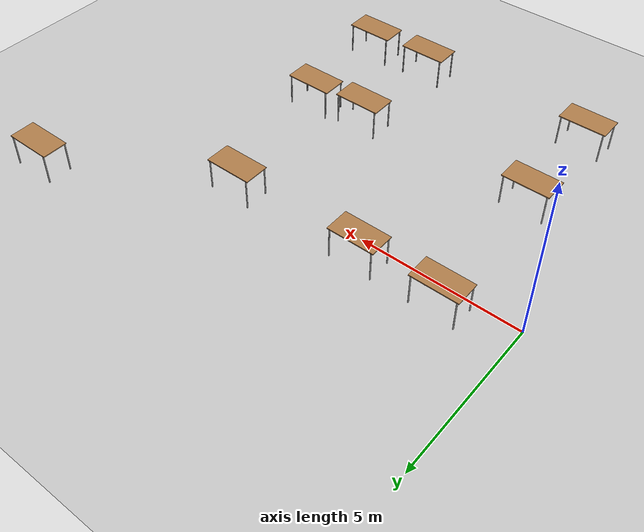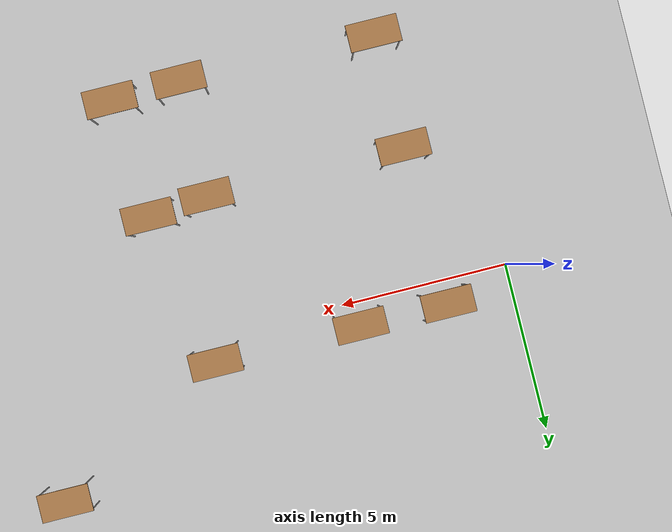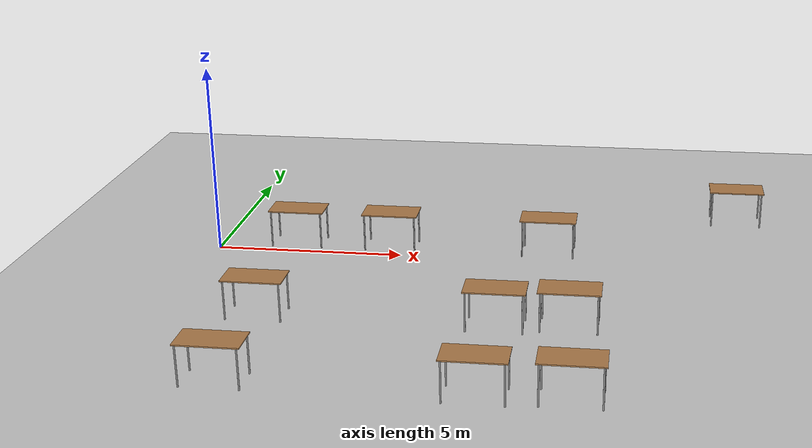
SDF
<sdf version="1.6">
 <world name="default">
  <model name="ground_plane">
   <static>1</static>
   <link name="link">
    <collision name="collision">
     <geometry><plane><normal>0 0 1</normal><size>100 100</size></plane></geometry>
     <surface>
      <contact><collide_bitmask>65535</collide_bitmask></contact>
      <friction><ode><mu>100</mu><mu2>50</mu2></ode></friction>
     </surface>
    </collision>
    <visual name="visual">
     <cast_shadows>0</cast_shadows>
     <geometry><plane><normal>0 0 1</normal><size>100 100</size></plane></geometry>
     <material>
      <script><uri>file://media/materials/scripts/gazebo.material</uri><name>Gazebo/Grey</name></script>
     </material>
    </visual>
   </link>
  </model>
  <model name="table_0">
   <static>1</static>
   <link name="link">
    <collision name="surface">
     <pose>0 0 1 0 -0 0</pose>
     <geometry><box><size>1.5 0.8 0.03</size></box></geometry>
     <surface><friction><ode><mu>0.6</mu><mu2>0.6</mu2></ode></friction></surface>
    </collision>
    <visual name="visual1">
     <pose>0 0 1 0 -0 0</pose>
     <geometry><box><size>1.5 0.8 0.03</size></box></geometry>
     <material>
      <script><uri>file://media/materials/scripts/gazebo.material</uri><name>Gazebo/Wood</name></script>
     </material>
    </visual>
    <collision name="front_left_leg">
     <pose>0.68 0.38 0.5 0 -0 0</pose>
     <geometry><cylinder><radius>0.02</radius><length>1</length></cylinder></geometry>
    </collision>
    <visual name="front_left_leg">
     <pose>0.68 0.38 0.5 0 -0 0</pose>
     <geometry><cylinder><radius>0.02</radius><length>1</length></cylinder></geometry>
     <material>
      <script><uri>file://media/materials/scripts/gazebo.material</uri><name>Gazebo/Grey</name></script>
     </material>
    </visual>
    <collision name="front_right_leg">
     <pose>0.68 -0.38 0.5 0 -0 0</pose>
     <geometry><cylinder><radius>0.02</radius><length>1</length></cylinder></geometry>
    </collision>
    <visual name="front_right_leg">
     <pose>0.68 -0.38 0.5 0 -0 0</pose>
     <geometry><cylinder><radius>0.02</radius><length>1</length></cylinder></geometry>
     <material>
      <script><uri>file://media/materials/scripts/gazebo.material</uri><name>Gazebo/Grey</name></script>
     </material>
    </visual>
    <collision name="back_right_leg">
     <pose>-0.68 -0.38 0.5 0 -0 0</pose>
     <geometry><cylinder><radius>0.02</radius><length>1</length></cylinder></geometry>
    </collision>
    <visual name="back_right_leg">
     <pose>-0.68 -0.38 0.5 0 -0 0</pose>
     <geometry><cylinder><radius>0.02</radius><length>1</length></cylinder></geometry>
     <material>
      <script><uri>file://media/materials/scripts/gazebo.material</uri><name>Gazebo/Grey</name></script>
     </material>
    </visual>
    <collision name="back_left_leg">
     <pose>-0.68 0.38 0.5 0 -0 0</pose>
     <geometry><cylinder><radius>0.02</radius><length>1</length></cylinder></geometry>
    </collision>
    <visual name="back_left_leg">
     <pose>-0.68 0.38 0.5 0 -0 0</pose>
     <geometry><cylinder><radius>0.02</radius><length>1</length></cylinder></geometry>
     <material>
      <script><uri>file://media/materials/scripts/gazebo.material</uri><name>Gazebo/Grey</name></script>
     </material>
    </visual>
   </link>
   <pose>4.6481 0.634532 0 0 -0 0</pose>
  </model>
  <model name="table_1">
   <static>1</static>
   <link name="link">
    <collision name="surface">
     <pose>0 0 1 0 -0 0</pose>
     <geometry><box><size>1.5 0.8 0.03</size></box></geometry>
     <surface><friction><ode><mu>0.6</mu><mu2>0.6</mu2></ode></friction></surface>
    </collision>
    <visual name="visual1">
     <pose>0 0 1 0 -0 0</pose>
     <geometry><box><size>1.5 0.8 0.03</size></box></geometry>
     <material>
      <script><uri>file://media/materials/scripts/gazebo.material</uri><name>Gazebo/Wood</name></script>
     </material>
    </visual>
    <collision name="front_left_leg">
     <pose>0.68 0.38 0.5 0 -0 0</pose>
     <geometry><cylinder><radius>0.02</radius><length>1</length></cylinder></geometry>
    </collision>
    <visual name="front_left_leg">
     <pose>0.68 0.38 0.5 0 -0 0</pose>
     <geometry><cylinder><radius>0.02</radius><length>1</length></cylinder></geometry>
     <material>
      <script><uri>file://media/materials/scripts/gazebo.material</uri><name>Gazebo/Grey</name></script>
     </material>
    </visual>
    <collision name="front_right_leg">
     <pose>0.68 -0.38 0.5 0 -0 0</pose>
     <geometry><cylinder><radius>0.02</radius><length>1</length></cylinder></geometry>
    </collision>
    <visual name="front_right_leg">
     <pose>0.68 -0.38 0.5 0 -0 0</pose>
     <geometry><cylinder><radius>0.02</radius><length>1</length></cylinder></geometry>
     <material>
      <script><uri>file://media/materials/scripts/gazebo.material</uri><name>Gazebo/Grey</name></script>
     </material>
    </visual>
    <collision name="back_right_leg">
     <pose>-0.68 -0.38 0.5 0 -0 0</pose>
     <geometry><cylinder><radius>0.02</radius><length>1</length></cylinder></geometry>
    </collision>
    <visual name="back_right_leg">
     <pose>-0.68 -0.38 0.5 0 -0 0</pose>
     <geometry><cylinder><radius>0.02</radius><length>1</length></cylinder></geometry>
     <material>
      <script><uri>file://media/materials/scripts/gazebo.material</uri><name>Gazebo/Grey</name></script>
     </material>
    </visual>
    <collision name="back_left_leg">
     <pose>-0.68 0.38 0.5 0 -0 0</pose>
     <geometry><cylinder><radius>0.02</radius><length>1</length></cylinder></geometry>
    </collision>
    <visual name="back_left_leg">
     <pose>-0.68 0.38 0.5 0 -0 0</pose>
     <geometry><cylinder><radius>0.02</radius><length>1</length></cylinder></geometry>
     <material>
      <script><uri>file://media/materials/scripts/gazebo.material</uri><name>Gazebo/Grey</name></script>
     </material>
    </visual>
   </link>
   <pose>2.07335 0.631478 0 0 -0 0</pose>
  </model>
  <model name="table_1_clone_1">
   <static>1</static>
   <link name="link">
    <collision name="surface">
     <pose>0 0 1 0 -0 0</pose>
     <geometry><box><size>1.5 0.8 0.03</size></box></geometry>
     <surface><friction><ode><mu>0.6</mu><mu2>0.6</mu2></ode></friction></surface>
    </collision>
    <visual name="visual1">
     <pose>0 0 1 0 -0 0</pose>
     <geometry><box><size>1.5 0.8 0.03</size></box></geometry>
     <material>
      <script><uri>file://media/materials/scripts/gazebo.material</uri><name>Gazebo/Wood</name></script>
     </material>
    </visual>
    <collision name="front_left_leg">
     <pose>0.68 0.38 0.5 0 -0 0</pose>
     <geometry><cylinder><radius>0.02</radius><length>1</length></cylinder></geometry>
    </collision>
    <visual name="front_left_leg">
     <pose>0.68 0.38 0.5 0 -0 0</pose>
     <geometry><cylinder><radius>0.02</radius><length>1</length></cylinder></geometry>
     <material>
      <script><uri>file://media/materials/scripts/gazebo.material</uri><name>Gazebo/Grey</name></script>
     </material>
    </visual>
    <collision name="front_right_leg">
     <pose>0.68 -0.38 0.5 0 -0 0</pose>
     <geometry><cylinder><radius>0.02</radius><length>1</length></cylinder></geometry>
    </collision>
    <visual name="front_right_leg">
     <pose>0.68 -0.38 0.5 0 -0 0</pose>
     <geometry><cylinder><radius>0.02</radius><length>1</length></cylinder></geometry>
     <material>
      <script><uri>file://media/materials/scripts/gazebo.material</uri><name>Gazebo/Grey</name></script>
     </material>
    </visual>
    <collision name="back_right_leg">
     <pose>-0.68 -0.38 0.5 0 -0 0</pose>
     <geometry><cylinder><radius>0.02</radius><length>1</length></cylinder></geometry>
    </collision>
    <visual name="back_right_leg">
     <pose>-0.68 -0.38 0.5 0 -0 0</pose>
     <geometry><cylinder><radius>0.02</radius><length>1</length></cylinder></geometry>
     <material>
      <script><uri>file://media/materials/scripts/gazebo.material</uri><name>Gazebo/Grey</name></script>
     </material>
    </visual>
    <collision name="back_left_leg">
     <pose>-0.68 0.38 0.5 0 -0 0</pose>
     <geometry><cylinder><radius>0.02</radius><length>1</length></cylinder></geometry>
    </collision>
    <visual name="back_left_leg">
     <pose>-0.68 0.38 0.5 0 -0 0</pose>
     <geometry><cylinder><radius>0.02</radius><length>1</length></cylinder></geometry>
     <material>
      <script><uri>file://media/materials/scripts/gazebo.material</uri><name>Gazebo/Grey</name></script>
     </material>
    </visual>
   </link>
   <pose>2.22704 -4.02272 0 0 -0 0</pose>
  </model>
  <model name="table_1_clone_2">
   <static>1</static>
   <link name="link">
    <collision name="surface">
     <pose>0 0 1 0 -0 0</pose>
     <geometry><box><size>1.5 0.8 0.03</size></box></geometry>
     <surface><friction><ode><mu>0.6</mu><mu2>0.6</mu2></ode></friction></surface>
    </collision>
    <visual name="visual1">
     <pose>0 0 1 0 -0 0</pose>
     <geometry><box><size>1.5 0.8 0.03</size></box></geometry>
     <material>
      <script><uri>file://media/materials/scripts/gazebo.material</uri><name>Gazebo/Wood</name></script>
     </material>
    </visual>
    <collision name="front_left_leg">
     <pose>0.68 0.38 0.5 0 -0 0</pose>
     <geometry><cylinder><radius>0.02</radius><length>1</length></cylinder></geometry>
    </collision>
    <visual name="front_left_leg">
     <pose>0.68 0.38 0.5 0 -0 0</pose>
     <geometry><cylinder><radius>0.02</radius><length>1</length></cylinder></geometry>
     <material>
      <script><uri>file://media/materials/scripts/gazebo.material</uri><name>Gazebo/Grey</name></script>
     </material>
    </visual>
    <collision name="front_right_leg">
     <pose>0.68 -0.38 0.5 0 -0 0</pose>
     <geometry><cylinder><radius>0.02</radius><length>1</length></cylinder></geometry>
    </collision>
    <visual name="front_right_leg">
     <pose>0.68 -0.38 0.5 0 -0 0</pose>
     <geometry><cylinder><radius>0.02</radius><length>1</length></cylinder></geometry>
     <material>
      <script><uri>file://media/materials/scripts/gazebo.material</uri><name>Gazebo/Grey</name></script>
     </material>
    </visual>
    <collision name="back_right_leg">
     <pose>-0.68 -0.38 0.5 0 -0 0</pose>
     <geometry><cylinder><radius>0.02</radius><length>1</length></cylinder></geometry>
    </collision>
    <visual name="back_right_leg">
     <pose>-0.68 -0.38 0.5 0 -0 0</pose>
     <geometry><cylinder><radius>0.02</radius><length>1</length></cylinder></geometry>
     <material>
      <script><uri>file://media/materials/scripts/gazebo.material</uri><name>Gazebo/Grey</name></script>
     </material>
    </visual>
    <collision name="back_left_leg">
     <pose>-0.68 0.38 0.5 0 -0 0</pose>
     <geometry><cylinder><radius>0.02</radius><length>1</length></cylinder></geometry>
    </collision>
    <visual name="back_left_leg">
     <pose>-0.68 0.38 0.5 0 -0 0</pose>
     <geometry><cylinder><radius>0.02</radius><length>1</length></cylinder></geometry>
     <material>
      <script><uri>file://media/materials/scripts/gazebo.material</uri><name>Gazebo/Grey</name></script>
     </material>
    </visual>
   </link>
   <pose>2.26716 -7.37331 0 0 -0 0</pose>
  </model>
  <model name="table_1_clone_4">
   <static>1</static>
   <link name="link">
    <collision name="surface">
     <pose>0 0 1 0 -0 0</pose>
     <geometry><box><size>1.5 0.8 0.03</size></box></geometry>
     <surface><friction><ode><mu>0.6</mu><mu2>0.6</mu2></ode></friction></surface>
    </collision>
    <visual name="visual1">
     <pose>0 0 1 0 -0 0</pose>
     <geometry><box><size>1.5 0.8 0.03</size></box></geometry>
     <material>
      <script><uri>file://media/materials/scripts/gazebo.material</uri><name>Gazebo/Wood</name></script>
     </material>
    </visual>
    <collision name="front_left_leg">
     <pose>0.68 0.38 0.5 0 -0 0</pose>
     <geometry><cylinder><radius>0.02</radius><length>1</length></cylinder></geometry>
    </collision>
    <visual name="front_left_leg">
     <pose>0.68 0.38 0.5 0 -0 0</pose>
     <geometry><cylinder><radius>0.02</radius><length>1</length></cylinder></geometry>
     <material>
      <script><uri>file://media/materials/scripts/gazebo.material</uri><name>Gazebo/Grey</name></script>
     </material>
    </visual>
    <collision name="front_right_leg">
     <pose>0.68 -0.38 0.5 0 -0 0</pose>
     <geometry><cylinder><radius>0.02</radius><length>1</length></cylinder></geometry>
    </collision>
    <visual name="front_right_leg">
     <pose>0.68 -0.38 0.5 0 -0 0</pose>
     <geometry><cylinder><radius>0.02</radius><length>1</length></cylinder></geometry>
     <material>
      <script><uri>file://media/materials/scripts/gazebo.material</uri><name>Gazebo/Grey</name></script>
     </material>
    </visual>
    <collision name="back_right_leg">
     <pose>-0.68 -0.38 0.5 0 -0 0</pose>
     <geometry><cylinder><radius>0.02</radius><length>1</length></cylinder></geometry>
    </collision>
    <visual name="back_right_leg">
     <pose>-0.68 -0.38 0.5 0 -0 0</pose>
     <geometry><cylinder><radius>0.02</radius><length>1</length></cylinder></geometry>
     <material>
      <script><uri>file://media/materials/scripts/gazebo.material</uri><name>Gazebo/Grey</name></script>
     </material>
    </visual>
    <collision name="back_left_leg">
     <pose>-0.68 0.38 0.5 0 -0 0</pose>
     <geometry><cylinder><radius>0.02</radius><length>1</length></cylinder></geometry>
    </collision>
    <visual name="back_left_leg">
     <pose>-0.68 0.38 0.5 0 -0 0</pose>
     <geometry><cylinder><radius>0.02</radius><length>1</length></cylinder></geometry>
     <material>
      <script><uri>file://media/materials/scripts/gazebo.material</uri><name>Gazebo/Grey</name></script>
     </material>
    </visual>
   </link>
   <pose>7.98789 -7.43447 0 0 -0 0</pose>
  </model>
  <model name="table_1_clone_5">
   <static>1</static>
   <link name="link">
    <collision name="surface">
     <pose>0 0 1 0 -0 0</pose>
     <geometry><box><size>1.5 0.8 0.03</size></box></geometry>
     <surface><friction><ode><mu>0.6</mu><mu2>0.6</mu2></ode></friction></surface>
    </collision>
    <visual name="visual1">
     <pose>0 0 1 0 -0 0</pose>
     <geometry><box><size>1.5 0.8 0.03</size></box></geometry>
     <material>
      <script><uri>file://media/materials/scripts/gazebo.material</uri><name>Gazebo/Wood</name></script>
     </material>
    </visual>
    <collision name="front_left_leg">
     <pose>0.68 0.38 0.5 0 -0 0</pose>
     <geometry><cylinder><radius>0.02</radius><length>1</length></cylinder></geometry>
    </collision>
    <visual name="front_left_leg">
     <pose>0.68 0.38 0.5 0 -0 0</pose>
     <geometry><cylinder><radius>0.02</radius><length>1</length></cylinder></geometry>
     <material>
      <script><uri>file://media/materials/scripts/gazebo.material</uri><name>Gazebo/Grey</name></script>
     </material>
    </visual>
    <collision name="front_right_leg">
     <pose>0.68 -0.38 0.5 0 -0 0</pose>
     <geometry><cylinder><radius>0.02</radius><length>1</length></cylinder></geometry>
    </collision>
    <visual name="front_right_leg">
     <pose>0.68 -0.38 0.5 0 -0 0</pose>
     <geometry><cylinder><radius>0.02</radius><length>1</length></cylinder></geometry>
     <material>
      <script><uri>file://media/materials/scripts/gazebo.material</uri><name>Gazebo/Grey</name></script>
     </material>
    </visual>
    <collision name="back_right_leg">
     <pose>-0.68 -0.38 0.5 0 -0 0</pose>
     <geometry><cylinder><radius>0.02</radius><length>1</length></cylinder></geometry>
    </collision>
    <visual name="back_right_leg">
     <pose>-0.68 -0.38 0.5 0 -0 0</pose>
     <geometry><cylinder><radius>0.02</radius><length>1</length></cylinder></geometry>
     <material>
      <script><uri>file://media/materials/scripts/gazebo.material</uri><name>Gazebo/Grey</name></script>
     </material>
    </visual>
    <collision name="back_left_leg">
     <pose>-0.68 0.38 0.5 0 -0 0</pose>
     <geometry><cylinder><radius>0.02</radius><length>1</length></cylinder></geometry>
    </collision>
    <visual name="back_left_leg">
     <pose>-0.68 0.38 0.5 0 -0 0</pose>
     <geometry><cylinder><radius>0.02</radius><length>1</length></cylinder></geometry>
     <material>
      <script><uri>file://media/materials/scripts/gazebo.material</uri><name>Gazebo/Grey</name></script>
     </material>
    </visual>
   </link>
   <pose>10.0344 -7.35421 0 0 -0 0</pose>
  </model>
  <model name="table_1_clone_6">
   <static>1</static>
   <link name="link">
    <collision name="surface">
     <pose>0 0 1 0 -0 0</pose>
     <geometry><box><size>1.5 0.8 0.03</size></box></geometry>
     <surface><friction><ode><mu>0.6</mu><mu2>0.6</mu2></ode></friction></surface>
    </collision>
    <visual name="visual1">
     <pose>0 0 1 0 -0 0</pose>
     <geometry><box><size>1.5 0.8 0.03</size></box></geometry>
     <material>
      <script><uri>file://media/materials/scripts/gazebo.material</uri><name>Gazebo/Wood</name></script>
     </material>
    </visual>
    <collision name="front_left_leg">
     <pose>0.68 0.38 0.5 0 -0 0</pose>
     <geometry><cylinder><radius>0.02</radius><length>1</length></cylinder></geometry>
    </collision>
    <visual name="front_left_leg">
     <pose>0.68 0.38 0.5 0 -0 0</pose>
     <geometry><cylinder><radius>0.02</radius><length>1</length></cylinder></geometry>
     <material>
      <script><uri>file://media/materials/scripts/gazebo.material</uri><name>Gazebo/Grey</name></script>
     </material>
    </visual>
    <collision name="front_right_leg">
     <pose>0.68 -0.38 0.5 0 -0 0</pose>
     <geometry><cylinder><radius>0.02</radius><length>1</length></cylinder></geometry>
    </collision>
    <visual name="front_right_leg">
     <pose>0.68 -0.38 0.5 0 -0 0</pose>
     <geometry><cylinder><radius>0.02</radius><length>1</length></cylinder></geometry>
     <material>
      <script><uri>file://media/materials/scripts/gazebo.material</uri><name>Gazebo/Grey</name></script>
     </material>
    </visual>
    <collision name="back_right_leg">
     <pose>-0.68 -0.38 0.5 0 -0 0</pose>
     <geometry><cylinder><radius>0.02</radius><length>1</length></cylinder></geometry>
    </collision>
    <visual name="back_right_leg">
     <pose>-0.68 -0.38 0.5 0 -0 0</pose>
     <geometry><cylinder><radius>0.02</radius><length>1</length></cylinder></geometry>
     <material>
      <script><uri>file://media/materials/scripts/gazebo.material</uri><name>Gazebo/Grey</name></script>
     </material>
    </visual>
    <collision name="back_left_leg">
     <pose>-0.68 0.38 0.5 0 -0 0</pose>
     <geometry><cylinder><radius>0.02</radius><length>1</length></cylinder></geometry>
    </collision>
    <visual name="back_left_leg">
     <pose>-0.68 0.38 0.5 0 -0 0</pose>
     <geometry><cylinder><radius>0.02</radius><length>1</length></cylinder></geometry>
     <material>
      <script><uri>file://media/materials/scripts/gazebo.material</uri><name>Gazebo/Grey</name></script>
     </material>
    </visual>
   </link>
   <pose>9.7735 -3.86318 0 0 -0 0</pose>
  </model>
  <model name="table_1_clone_7">
   <static>1</static>
   <link name="link">
    <collision name="surface">
     <pose>0 0 1 0 -0 0</pose>
     <geometry><box><size>1.5 0.8 0.03</size></box></geometry>
     <surface><friction><ode><mu>0.6</mu><mu2>0.6</mu2></ode></friction></surface>
    </collision>
    <visual name="visual1">
     <pose>0 0 1 0 -0 0</pose>
     <geometry><box><size>1.5 0.8 0.03</size></box></geometry>
     <material>
      <script><uri>file://media/materials/scripts/gazebo.material</uri><name>Gazebo/Wood</name></script>
     </material>
    </visual>
    <collision name="front_left_leg">
     <pose>0.68 0.38 0.5 0 -0 0</pose>
     <geometry><cylinder><radius>0.02</radius><length>1</length></cylinder></geometry>
    </collision>
    <visual name="front_left_leg">
     <pose>0.68 0.38 0.5 0 -0 0</pose>
     <geometry><cylinder><radius>0.02</radius><length>1</length></cylinder></geometry>
     <material>
      <script><uri>file://media/materials/scripts/gazebo.material</uri><name>Gazebo/Grey</name></script>
     </material>
    </visual>
    <collision name="front_right_leg">
     <pose>0.68 -0.38 0.5 0 -0 0</pose>
     <geometry><cylinder><radius>0.02</radius><length>1</length></cylinder></geometry>
    </collision>
    <visual name="front_right_leg">
     <pose>0.68 -0.38 0.5 0 -0 0</pose>
     <geometry><cylinder><radius>0.02</radius><length>1</length></cylinder></geometry>
     <material>
      <script><uri>file://media/materials/scripts/gazebo.material</uri><name>Gazebo/Grey</name></script>
     </material>
    </visual>
    <collision name="back_right_leg">
     <pose>-0.68 -0.38 0.5 0 -0 0</pose>
     <geometry><cylinder><radius>0.02</radius><length>1</length></cylinder></geometry>
    </collision>
    <visual name="back_right_leg">
     <pose>-0.68 -0.38 0.5 0 -0 0</pose>
     <geometry><cylinder><radius>0.02</radius><length>1</length></cylinder></geometry>
     <material>
      <script><uri>file://media/materials/scripts/gazebo.material</uri><name>Gazebo/Grey</name></script>
     </material>
    </visual>
    <collision name="back_left_leg">
     <pose>-0.68 0.38 0.5 0 -0 0</pose>
     <geometry><cylinder><radius>0.02</radius><length>1</length></cylinder></geometry>
    </collision>
    <visual name="back_left_leg">
     <pose>-0.68 0.38 0.5 0 -0 0</pose>
     <geometry><cylinder><radius>0.02</radius><length>1</length></cylinder></geometry>
     <material>
      <script><uri>file://media/materials/scripts/gazebo.material</uri><name>Gazebo/Grey</name></script>
     </material>
    </visual>
   </link>
   <pose>8.02795 -4.02369 0 0 -0 0</pose>
  </model>
  <model name="table_1_clone_8">
   <static>1</static>
   <link name="link">
    <collision name="surface">
     <pose>0 0 1 0 -0 0</pose>
     <geometry><box><size>1.5 0.8 0.03</size></box></geometry>
     <surface><friction><ode><mu>0.6</mu><mu2>0.6</mu2></ode></friction></surface>
    </collision>
    <visual name="visual1">
     <pose>0 0 1 0 -0 0</pose>
     <geometry><box><size>1.5 0.8 0.03</size></box></geometry>
     <material>
      <script><uri>file://media/materials/scripts/gazebo.material</uri><name>Gazebo/Wood</name></script>
     </material>
    </visual>
    <collision name="front_left_leg">
     <pose>0.68 0.38 0.5 0 -0 0</pose>
     <geometry><cylinder><radius>0.02</radius><length>1</length></cylinder></geometry>
    </collision>
    <visual name="front_left_leg">
     <pose>0.68 0.38 0.5 0 -0 0</pose>
     <geometry><cylinder><radius>0.02</radius><length>1</length></cylinder></geometry>
     <material>
      <script><uri>file://media/materials/scripts/gazebo.material</uri><name>Gazebo/Grey</name></script>
     </material>
    </visual>
    <collision name="front_right_leg">
     <pose>0.68 -0.38 0.5 0 -0 0</pose>
     <geometry><cylinder><radius>0.02</radius><length>1</length></cylinder></geometry>
    </collision>
    <visual name="front_right_leg">
     <pose>0.68 -0.38 0.5 0 -0 0</pose>
     <geometry><cylinder><radius>0.02</radius><length>1</length></cylinder></geometry>
     <material>
      <script><uri>file://media/materials/scripts/gazebo.material</uri><name>Gazebo/Grey</name></script>
     </material>
    </visual>
    <collision name="back_right_leg">
     <pose>-0.68 -0.38 0.5 0 -0 0</pose>
     <geometry><cylinder><radius>0.02</radius><length>1</length></cylinder></geometry>
    </collision>
    <visual name="back_right_leg">
     <pose>-0.68 -0.38 0.5 0 -0 0</pose>
     <geometry><cylinder><radius>0.02</radius><length>1</length></cylinder></geometry>
     <material>
      <script><uri>file://media/materials/scripts/gazebo.material</uri><name>Gazebo/Grey</name></script>
     </material>
    </visual>
    <collision name="back_left_leg">
     <pose>-0.68 0.38 0.5 0 -0 0</pose>
     <geometry><cylinder><radius>0.02</radius><length>1</length></cylinder></geometry>
    </collision>
    <visual name="back_left_leg">
     <pose>-0.68 0.38 0.5 0 -0 0</pose>
     <geometry><cylinder><radius>0.02</radius><length>1</length></cylinder></geometry>
     <material>
      <script><uri>file://media/materials/scripts/gazebo.material</uri><name>Gazebo/Grey</name></script>
     </material>
    </visual>
   </link>
   <pose>8.93083 0.651093 0 0 -0 0</pose>
  </model>
  <model name="table_1_clone_9">
   <static>1</static>
   <link name="link">
    <collision name="surface">
     <pose>0 0 1 0 -0 0</pose>
     <geometry><box><size>1.5 0.8 0.03</size></box></geometry>
     <surface><friction><ode><mu>0.6</mu><mu2>0.6</mu2></ode></friction></surface>
    </collision>
    <visual name="visual1">
     <pose>0 0 1 0 -0 0</pose>
     <geometry><box><size>1.5 0.8 0.03</size></box></geometry>
     <material>
      <script><uri>file://media/materials/scripts/gazebo.material</uri><name>Gazebo/Wood</name></script>
     </material>
    </visual>
    <collision name="front_left_leg">
     <pose>0.68 0.38 0.5 0 -0 0</pose>
     <geometry><cylinder><radius>0.02</radius><length>1</length></cylinder></geometry>
    </collision>
    <visual name="front_left_leg">
     <pose>0.68 0.38 0.5 0 -0 0</pose>
     <geometry><cylinder><radius>0.02</radius><length>1</length></cylinder></geometry>
     <material>
      <script><uri>file://media/materials/scripts/gazebo.material</uri><name>Gazebo/Grey</name></script>
     </material>
    </visual>
    <collision name="front_right_leg">
     <pose>0.68 -0.38 0.5 0 -0 0</pose>
     <geometry><cylinder><radius>0.02</radius><length>1</length></cylinder></geometry>
    </collision>
    <visual name="front_right_leg">
     <pose>0.68 -0.38 0.5 0 -0 0</pose>
     <geometry><cylinder><radius>0.02</radius><length>1</length></cylinder></geometry>
     <material>
      <script><uri>file://media/materials/scripts/gazebo.material</uri><name>Gazebo/Grey</name></script>
     </material>
    </visual>
    <collision name="back_right_leg">
     <pose>-0.68 -0.38 0.5 0 -0 0</pose>
     <geometry><cylinder><radius>0.02</radius><length>1</length></cylinder></geometry>
    </collision>
    <visual name="back_right_leg">
     <pose>-0.68 -0.38 0.5 0 -0 0</pose>
     <geometry><cylinder><radius>0.02</radius><length>1</length></cylinder></geometry>
     <material>
      <script><uri>file://media/materials/scripts/gazebo.material</uri><name>Gazebo/Grey</name></script>
     </material>
    </visual>
    <collision name="back_left_leg">
     <pose>-0.68 0.38 0.5 0 -0 0</pose>
     <geometry><cylinder><radius>0.02</radius><length>1</length></cylinder></geometry>
    </collision>
    <visual name="back_left_leg">
     <pose>-0.68 0.38 0.5 0 -0 0</pose>
     <geometry><cylinder><radius>0.02</radius><length>1</length></cylinder></geometry>
     <material>
      <script><uri>file://media/materials/scripts/gazebo.material</uri><name>Gazebo/Grey</name></script>
     </material>
    </visual>
   </link>
   <pose>14.0672 3.50019 0 0 -0 0</pose>
  </model>
 </world>
</sdf>
